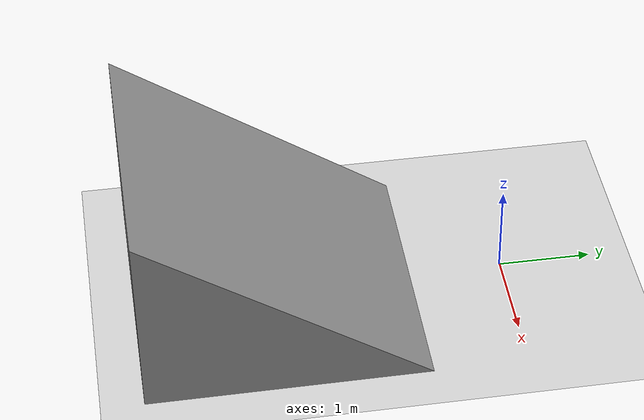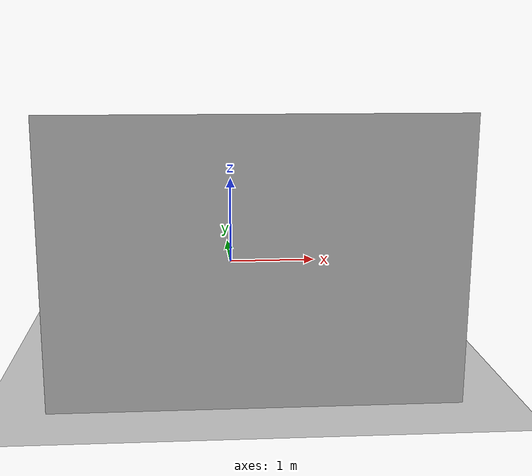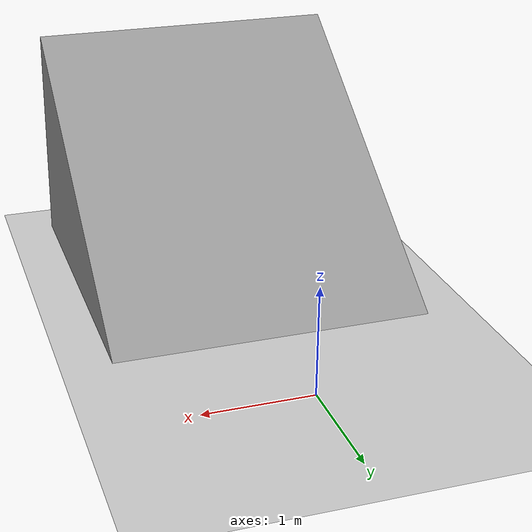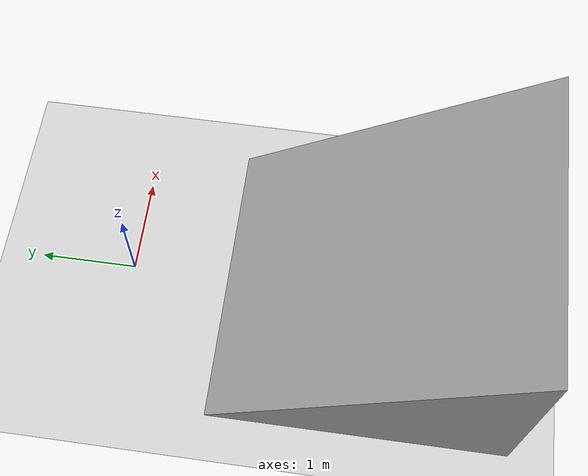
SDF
<?xml version="1.0" ?>
<sdf version="1.6">
  <world name="default">
  <gravity>0 0 -9.81</gravity>
  <physics name="ode_400iters" type="ode" default="true">
    <!-- the combination of 2 params below provides real time factor speed for simulation -->
    <!-- max_real_time_factor = real_time_update_rate * max_step_size -->
    <!-- min_real_time_factor depends only from max_step_size -->
    <real_time_update_rate>1000</real_time_update_rate>
    <max_step_size>0.002</max_step_size>
      <ode>
        <solver>
          <type>quick</type>
          <iters>900</iters>
          <!-- sor is number for more accurate results of convergence (сходимость)-->
           <sor>0.9</sor>
        </solver>
        <constraints>
      </constraints>
      </ode>
    </physics>
    <include>
      <uri>model://strirus_gazebo/maps/Ground_plane</uri>
    </include>
    <include>
      <uri>model://sun</uri>
    </include>
        <include>
		<uri>model://strirus_gazebo/maps/Slope_45deg</uri>
      <name>Terrain</name>
      <pose>1.5 -1 0 0 0 0</pose>
    </include>
  </world>
</sdf>

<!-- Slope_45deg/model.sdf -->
<sdf version='1.6'>
  <model name='Terrain'>
    <link name='link_0'>
      <inertial>
        <mass>1</mass>
        <inertia>
          <ixx>0.166667</ixx>
          <ixy>0</ixy>
          <ixz>0</ixz>
          <iyy>0.166667</iyy>
          <iyz>0</iyz>
          <izz>0.166667</izz>
        </inertia>
        <pose frame=''>0 0 0 0 -0 0</pose>
      </inertial>
      <pose frame=''>-0 3e-06 0 0 -0 -3.14</pose>
      <gravity>1</gravity>
      <self_collide>0</self_collide>
      <kinematic>0</kinematic>
      <enable_wind>0</enable_wind>
      <visual name='visual'>
        <pose frame=''>0 0 0 0 -0 0</pose>
        <geometry>
          <mesh>
            <uri>model://strirus_gazebo/maps/Slope_45deg/triangle.stl</uri>
            <scale>3 3 2.1</scale>
          </mesh>
        </geometry>
        <material>
          <lighting>1</lighting>
          <script>
            <uri>file://media/materials/scripts/gazebo.material</uri>
            <name>Gazebo/Grey</name>
          </script>
          <ambient>0.3 0.3 0.3 1</ambient>
          <diffuse>0.7 0.7 0.7 1</diffuse>
          <specular>0.01 0.01 0.01 1</specular>
          <emissive>0 0 0 1</emissive>
          <shader type='vertex'>
            <normal_map>__default__</normal_map>
          </shader>
        </material>
        <transparency>0</transparency>
        <cast_shadows>1</cast_shadows>
      </visual>
      <collision name='collision'>
        <laser_retro>0</laser_retro>
        <max_contacts>10</max_contacts>
        <pose frame=''>0 0 0 0 -0 0</pose>
        <geometry>
          <mesh>
            <uri>model://strirus_gazebo/maps/Slope_45deg/triangle.stl</uri>
            <scale>3 3 2.1</scale>
          </mesh>
        </geometry>
        <surface>
          <friction>
            <ode>
              <mu>100</mu>
              <mu2>100</mu2>
              <fdir1>0 0 0</fdir1>
              <slip1>0</slip1>
              <slip2>0</slip2>
            </ode>
            <torsional>
              <coefficient>1</coefficient>
              <patch_radius>0</patch_radius>
              <surface_radius>0</surface_radius>
              <use_patch_radius>1</use_patch_radius>
              <ode>
                <slip>0</slip>
              </ode>
            </torsional>
          </friction>
          <bounce>
            <restitution_coefficient>0</restitution_coefficient>
            <threshold>1e+06</threshold>
          </bounce>
          <contact>
            <collide_without_contact>0</collide_without_contact>
            <collide_without_contact_bitmask>1</collide_without_contact_bitmask>
            <collide_bitmask>1</collide_bitmask>
            <ode>
              <soft_cfm>0</soft_cfm>
              <soft_erp>0.2</soft_erp>
              <kp>1e+13</kp>
              <kd>1</kd>
              <max_vel>0.01</max_vel>
              <min_depth>0</min_depth>
            </ode>
            <bullet>
              <split_impulse>1</split_impulse>
              <split_impulse_penetration_threshold>-0.01</split_impulse_penetration_threshold>
              <soft_cfm>0</soft_cfm>
              <soft_erp>0.2</soft_erp>
              <kp>1e+13</kp>
              <kd>1</kd>
            </bullet>
          </contact>
        </surface>
      </collision>
    </link>
    <static>1</static>
    <allow_auto_disable>1</allow_auto_disable>
  </model>
</sdf>
